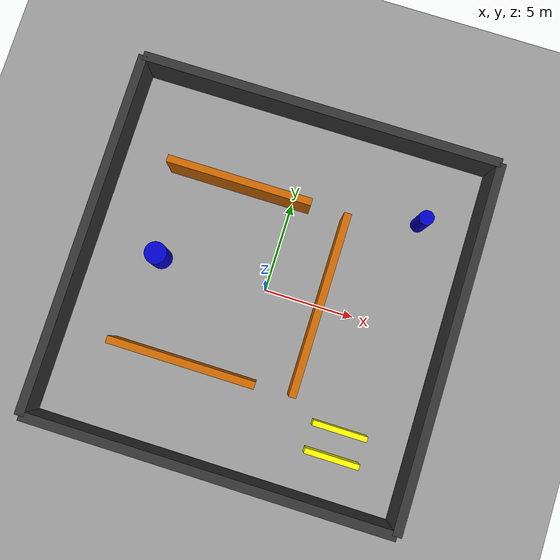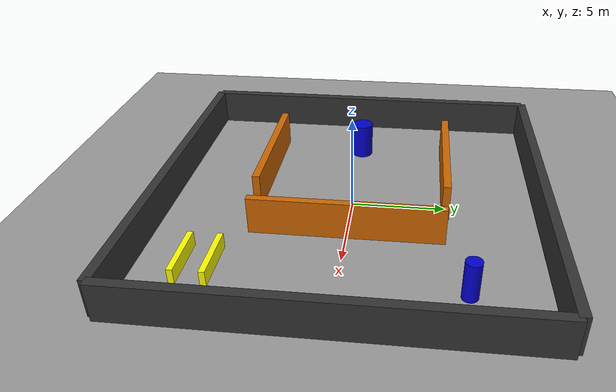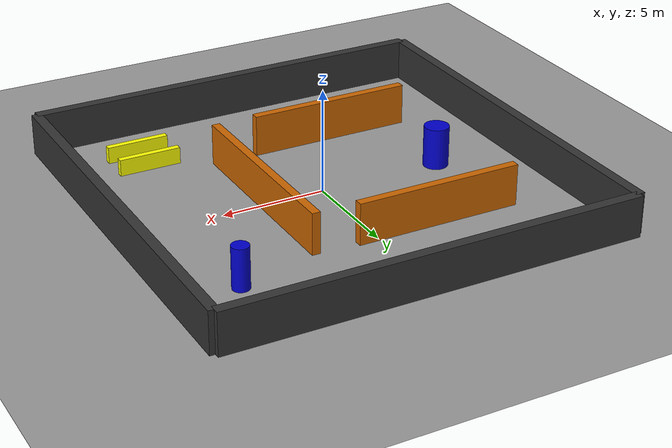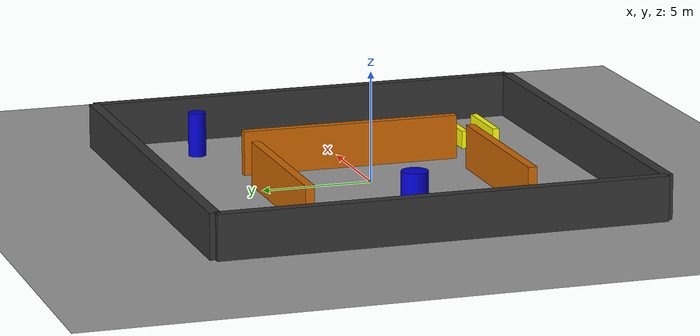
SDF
<?xml version="1.0" ?>
<sdf version="1.7">
  <world name="forest_world">

    <!-- 1. HỆ THỐNG LÕI IGNITION 6 (BẮT BUỘC)          -->
    <plugin name='gz::sim::systems::Physics' filename='ignition-gazebo-physics-system'/>
    <plugin name='gz::sim::systems::UserCommands' filename='ignition-gazebo-user-commands-system'/>
    <plugin name='gz::sim::systems::SceneBroadcaster' filename='ignition-gazebo-scene-broadcaster-system'/>
    <plugin name='gz::sim::systems::Contact' filename='ignition-gazebo-contact-system'/>
    <plugin filename="ignition-gazebo-imu-system" name="ignition::gazebo::systems::Imu">
    </plugin>
    <plugin filename="ignition-gazebo-sensors-system" name="ignition::gazebo::systems::Sensors">
      <render_engine>ogre2</render_engine>
    </plugin>
    <plugin filename="libignition-gazebo-pose-publisher-system.so" name="ignition::gazebo::systems::PosePublisher">
        <publish_link_pose>true</publish_link_pose>
        <publish_model_pose>true</publish_model_pose>
        <publish_nested_model_pose>true</publish_nested_model_pose>
        <use_pose_vector_msg>true</use_pose_vector_msg>
        <update_frequency>50</update_frequency>
    </plugin>
    <!-- Ánh sáng -->
    <light type="directional" name="sun">
      <cast_shadows>true</cast_shadows>
      <pose>0 0 10 0 0 0</pose>
      <diffuse>1 1 1 1</diffuse>
      <direction>-0.5 0.5 -1</direction>
    </light>

    <!-- Sân bãi (Màu xám bê tông cho dễ nhìn) -->
    <model name="ground_plane">
      <static>true</static>
      <link name="link">
        <collision name="collision">
          <geometry>
            <plane>
              <normal>0 0 1</normal>
              <size>30 30</size>
            </plane>
          </geometry>
          <!-- Thêm thuộc tính bề mặt và ma sát tại đây -->
          <surface>
            <friction>
              <ode>
                <mu>50.0</mu>    <!-- Hệ số ma sát dọc -->
                <mu2>50.0</mu2>   <!-- Hệ số ma sát ngang -->
              </ode>
            </friction>
          </surface>
        </collision>
        <visual name="visual">
          <geometry>
            <plane>
              <normal>0 0 1</normal>
              <size>30 30</size>
            </plane>
          </geometry>
          <material>
            <ambient>0.6 0.6 0.6 1</ambient>
            <diffuse>0.6 0.6 0.6 1</diffuse>
          </material>
        </visual>
      </link>
    </model>

    <!-- 2. TƯỜNG BAO NGOÀI (Khu vực 20x20m)            -->
    <model name="boundary_walls">
      <static>true</static>
      <link name="link">
        <!-- Tường Bắc & Nam -->
        <collision name="n"><pose>0 10 1 0 0 0</pose><geometry><box><size>20 0.5 2</size></box></geometry></collision>
        <visual name="vn"><pose>0 10 1 0 0 0</pose><geometry><box><size>20 0.5 2</size></box></geometry><material><ambient>0.2 0.2 0.2 1</ambient></material></visual>
        <collision name="s"><pose>0 -10 1 0 0 0</pose><geometry><box><size>20 0.5 2</size></box></geometry></collision>
        <visual name="vs"><pose>0 -10 1 0 0 0</pose><geometry><box><size>20 0.5 2</size></box></geometry><material><ambient>0.2 0.2 0.2 1</ambient></material></visual>
        <!-- Tường Đông & Tây -->
        <collision name="e"><pose>10 0 1 0 0 0</pose><geometry><box><size>0.5 20 2</size></box></geometry></collision>
        <visual name="ve"><pose>10 0 1 0 0 0</pose><geometry><box><size>0.5 20 2</size></box></geometry><material><ambient>0.2 0.2 0.2 1</ambient></material></visual>
        <collision name="w"><pose>-10 0 1 0 0 0</pose><geometry><box><size>0.5 20 2</size></box></geometry></collision>
        <visual name="vw"><pose>-10 0 1 0 0 0</pose><geometry><box><size>0.5 20 2</size></box></geometry><material><ambient>0.2 0.2 0.2 1</ambient></material></visual>
      </link>
    </model>

    <!-- 3. MÊ CUNG ZICZAC (Cho LiDAR quết góc)         -->
    <model name="maze_walls">
      <static>true</static>
      <link name="link">
        <collision name="m1"><pose>-3 5 1 0 0 0</pose><geometry><box><size>8 0.4 2</size></box></geometry></collision>
        <visual name="v_m1"><pose>-3 5 1 0 0 0</pose><geometry><box><size>8 0.4 2</size></box></geometry><material><ambient>0.8 0.4 0 1</ambient><diffuse>0.8 0.4 0 1</diffuse></material></visual>

        <collision name="m2"><pose>3 0 1 0 0 0</pose><geometry><box><size>0.4 10 2</size></box></geometry></collision>
        <visual name="v_m2"><pose>3 0 1 0 0 0</pose><geometry><box><size>0.4 10 2</size></box></geometry><material><ambient>0.8 0.4 0 1</ambient><diffuse>0.8 0.4 0 1</diffuse></material></visual>

        <collision name="m3"><pose>-3 -5 1 0 0 0</pose><geometry><box><size>8 0.4 2</size></box></geometry></collision>
        <visual name="v_m3"><pose>-3 -5 1 0 0 0</pose><geometry><box><size>8 0.4 2</size></box></geometry><material><ambient>0.8 0.4 0 1</ambient><diffuse>0.8 0.4 0 1</diffuse></material></visual>
      </link>
    </model>

    <!-- 4. CHƯỚNG NGẠI VẬT TRÒN (Tránh né)             -->
    <model name="pillars">
      <static>true</static>
      <link name="link">
        <collision name="p1"><pose>-6 0 1 0 0 0</pose><geometry><cylinder><radius>0.6</radius><length>2</length></cylinder></geometry></collision>
        <visual name="vp1"><pose>-6 0 1 0 0 0</pose><geometry><cylinder><radius>0.6</radius><length>2</length></cylinder></geometry><material><ambient>0 0 0.8 1</ambient></material></visual>

        <collision name="p2"><pose>7 6 1 0 0 0</pose><geometry><cylinder><radius>0.4</radius><length>2</length></cylinder></geometry></collision>
        <visual name="vp2"><pose>7 6 1 0 0 0</pose><geometry><cylinder><radius>0.4</radius><length>2</length></cylinder></geometry><material><ambient>0 0 0.8 1</ambient></material></visual>
      </link>
    </model>

    <!-- 5. BÀI TEST IMU: Gờ giảm tốc & Dốc nghiêng     -->
    <model name="imu_tests">
      <static>true</static>
      <link name="link">
        <!-- Gờ giảm tốc màu vàng (Cao 5cm) -->
        <collision name="bump1"><pose>6 -6 0.025 0 0 0</pose><geometry><box><size>3 0.3 1.5</size></box></geometry></collision>
        <visual name="vbump1"><pose>6 -6 0.025 0 0 0</pose><geometry><box><size>3 0.3 1.5</size></box></geometry><material><ambient>1 1 0 1</ambient></material></visual>

        <collision name="bump2"><pose>6 -7.5 0.025 0 0 0</pose><geometry><box><size>3 0.3 1.5</size></box></geometry></collision>
        <visual name="vbump2"><pose>6 -7.5 0.025 0 0 0</pose><geometry><box><size>3 0.3 1.5</size></box></geometry><material><ambient>1 1 0 1</ambient></material></visual>
      </link>
    </model>

  </world>
</sdf>
